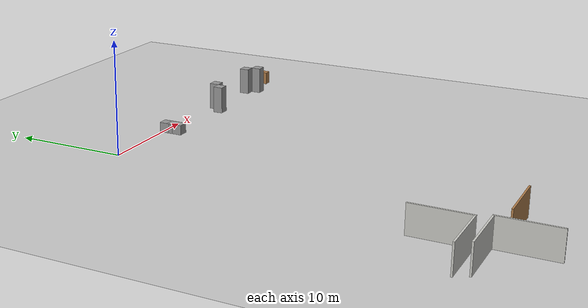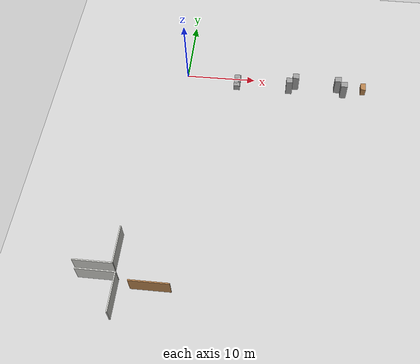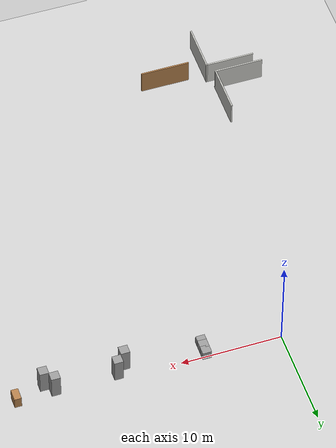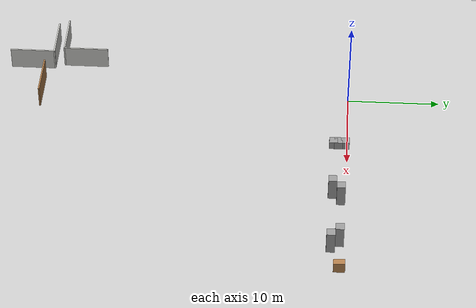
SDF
<sdf version="1.7">
 <world name="default">
  <model name="ground_plane">
   <static>1</static>
   <link name="link">
    <collision name="collision">
     <geometry><plane><normal>0 0 1</normal><size>100 100</size></plane></geometry>
     <surface><friction><ode><mu>100</mu><mu2>50</mu2></ode></friction></surface>
    </collision>
    <visual name="visual">
     <cast_shadows>0</cast_shadows>
     <geometry><plane><normal>0 0 1</normal><size>100 100</size></plane></geometry>
     <material>
      <script><uri>file://media/materials/scripts/gazebo.material</uri><name>Gazebo/Grey</name></script>
     </material>
    </visual>
   </link>
  </model>
  <model name="Untitled_clone_0">
   <link name="Wall_2">
    <pose>0 -2.2325 0 0 -0 0</pose>
    <visual name="Wall_2_Visual">
     <pose>0 0 1.25 0 -0 0</pose>
     <geometry><box><size>5 0.15 2.5</size></box></geometry>
     <material>
      <script><uri>file://media/materials/scripts/gazebo.material</uri><name>Gazebo/CeilingTiled</name></script>
      <ambient>1 1 1 1</ambient>
      <shader type="pixel"/>
     </material>
     <meta><layer>0</layer></meta>
    </visual>
    <collision name="Wall_2_Collision">
     <pose>0 0 1.25 0 -0 0</pose>
     <geometry><box><size>5 0.15 2.5</size></box></geometry>
     <surface>
      <friction>
       <ode><mu>1</mu><mu2>1</mu2><fdir1>0 0 0</fdir1><slip1>0</slip1><slip2>0</slip2></ode>
       <torsional>
        <coefficient>1</coefficient>
        <patch_radius>0</patch_radius>
        <surface_radius>0</surface_radius>
        <use_patch_radius>1</use_patch_radius>
        <ode><slip>0</slip></ode>
       </torsional>
      </friction>
      <bounce><restitution_coefficient>0</restitution_coefficient><threshold>1e+06</threshold></bounce>
      <contact>
       <collide_without_contact>0</collide_without_contact>
       <collide_without_contact_bitmask>1</collide_without_contact_bitmask>
       <collide_bitmask>1</collide_bitmask>
       <ode>
        <soft_cfm>0</soft_cfm>
        <soft_erp>0.2</soft_erp>
        <kp>1e+13</kp>
        <kd>1</kd>
        <max_vel>0.01</max_vel>
        <min_depth>0</min_depth>
       </ode>
       <bullet>
        <split_impulse>1</split_impulse>
        <split_impulse_penetration_threshold>-0.01</split_impulse_penetration_threshold>
        <soft_cfm>0</soft_cfm>
        <soft_erp>0.2</soft_erp>
        <kp>1e+13</kp>
        <kd>1</kd>
       </bullet>
      </contact>
     </surface>
    </collision>
   </link>
   <link name="Wall_2_clone_clone">
    <pose>2.42084 -4.65277 0 0 -0 1.57</pose>
    <inertial>
     <mass>1</mass>
     <inertia><ixx>1</ixx><ixy>0</ixy><ixz>0</ixz><iyy>1</iyy><iyz>0</iyz><izz>1</izz></inertia>
    </inertial>
    <visual name="Wall_2_Visual">
     <pose>0 0 1.25 0 -0 0</pose>
     <geometry><box><size>5 0.15 2.5</size></box></geometry>
     <material>
      <script><uri>file://media/materials/scripts/gazebo.material</uri><name>Gazebo/CeilingTiled</name></script>
      <ambient>1 1 1 1</ambient>
      <shader type="pixel"><normal_map>__default__</normal_map></shader>
      <diffuse>1 1 1 1</diffuse>
      <specular>0 0 0 1</specular>
      <emissive>0 0 0 1</emissive>
     </material>
     <meta><layer>0</layer></meta>
    </visual>
    <collision name="Wall_2_Collision">
     <pose>0 0 1.25 0 -0 0</pose>
     <geometry><box><size>5 0.15 2.5</size></box></geometry>
     <surface>
      <friction>
       <ode><mu>1</mu><mu2>1</mu2><fdir1>0 0 0</fdir1><slip1>0</slip1><slip2>0</slip2></ode>
       <torsional>
        <coefficient>1</coefficient>
        <patch_radius>0</patch_radius>
        <surface_radius>0</surface_radius>
        <use_patch_radius>1</use_patch_radius>
        <ode><slip>0</slip></ode>
       </torsional>
      </friction>
      <bounce><restitution_coefficient>0</restitution_coefficient><threshold>1e+06</threshold></bounce>
      <contact>
       <collide_without_contact>0</collide_without_contact>
       <collide_without_contact_bitmask>1</collide_without_contact_bitmask>
       <collide_bitmask>1</collide_bitmask>
       <ode>
        <soft_cfm>0</soft_cfm>
        <soft_erp>0.2</soft_erp>
        <kp>1e+13</kp>
        <kd>1</kd>
        <max_vel>0.01</max_vel>
        <min_depth>0</min_depth>
       </ode>
       <bullet>
        <split_impulse>1</split_impulse>
        <split_impulse_penetration_threshold>-0.01</split_impulse_penetration_threshold>
        <soft_cfm>0</soft_cfm>
        <soft_erp>0.2</soft_erp>
        <kp>1e+13</kp>
        <kd>1</kd>
       </bullet>
      </contact>
     </surface>
    </collision>
   </link>
   <static>1</static>
   <pose>-6.29197 -30.9758 0 0 -0 0</pose>
  </model>
  <model name="Untitled_clone_clone_clone_clone_0">
   <link name="Wall_2">
    <pose>0 -2.2325 0 0 -0 0</pose>
    <visual name="Wall_2_Visual">
     <pose>0 0 1.25 0 -0 0</pose>
     <geometry><box><size>5 0.15 2.5</size></box></geometry>
     <material>
      <script><uri>file://media/materials/scripts/gazebo.material</uri><name>Gazebo/CeilingTiled</name></script>
      <ambient>1 1 1 1</ambient>
      <shader type="pixel"/>
     </material>
     <meta><layer>0</layer></meta>
    </visual>
    <collision name="Wall_2_Collision">
     <pose>0 0 1.25 0 -0 0</pose>
     <geometry><box><size>5 0.15 2.5</size></box></geometry>
     <surface>
      <friction>
       <ode><mu>1</mu><mu2>1</mu2><fdir1>0 0 0</fdir1><slip1>0</slip1><slip2>0</slip2></ode>
       <torsional>
        <coefficient>1</coefficient>
        <patch_radius>0</patch_radius>
        <surface_radius>0</surface_radius>
        <use_patch_radius>1</use_patch_radius>
        <ode><slip>0</slip></ode>
       </torsional>
      </friction>
      <bounce><restitution_coefficient>0</restitution_coefficient><threshold>1e+06</threshold></bounce>
      <contact>
       <collide_without_contact>0</collide_without_contact>
       <collide_without_contact_bitmask>1</collide_without_contact_bitmask>
       <collide_bitmask>1</collide_bitmask>
       <ode>
        <soft_cfm>0</soft_cfm>
        <soft_erp>0.2</soft_erp>
        <kp>1e+13</kp>
        <kd>1</kd>
        <max_vel>0.01</max_vel>
        <min_depth>0</min_depth>
       </ode>
       <bullet>
        <split_impulse>1</split_impulse>
        <split_impulse_penetration_threshold>-0.01</split_impulse_penetration_threshold>
        <soft_cfm>0</soft_cfm>
        <soft_erp>0.2</soft_erp>
        <kp>1e+13</kp>
        <kd>1</kd>
       </bullet>
      </contact>
     </surface>
    </collision>
   </link>
   <link name="Wall_2_clone_clone_clone_clone">
    <pose>2.42664 0.193548 0 0 -0 1.57</pose>
    <inertial>
     <mass>1</mass>
     <inertia><ixx>1</ixx><ixy>0</ixy><ixz>0</ixz><iyy>1</iyy><iyz>0</iyz><izz>1</izz></inertia>
    </inertial>
    <visual name="Wall_2_Visual">
     <pose>0 0 1.25 0 -0 0</pose>
     <geometry><box><size>5 0.15 2.5</size></box></geometry>
     <material>
      <script><uri>file://media/materials/scripts/gazebo.material</uri><name>Gazebo/CeilingTiled</name></script>
      <ambient>1 1 1 1</ambient>
      <shader type="pixel"><normal_map>__default__</normal_map></shader>
      <diffuse>1 1 1 1</diffuse>
      <specular>0 0 0 1</specular>
      <emissive>0 0 0 1</emissive>
     </material>
     <meta><layer>0</layer></meta>
    </visual>
    <collision name="Wall_2_Collision">
     <pose>0 0 1.25 0 -0 0</pose>
     <geometry><box><size>5 0.15 2.5</size></box></geometry>
     <surface>
      <friction>
       <ode><mu>1</mu><mu2>1</mu2><fdir1>0 0 0</fdir1><slip1>0</slip1><slip2>0</slip2></ode>
       <torsional>
        <coefficient>1</coefficient>
        <patch_radius>0</patch_radius>
        <surface_radius>0</surface_radius>
        <use_patch_radius>1</use_patch_radius>
        <ode><slip>0</slip></ode>
       </torsional>
      </friction>
      <bounce><restitution_coefficient>0</restitution_coefficient><threshold>1e+06</threshold></bounce>
      <contact>
       <collide_without_contact>0</collide_without_contact>
       <collide_without_contact_bitmask>1</collide_without_contact_bitmask>
       <collide_bitmask>1</collide_bitmask>
       <ode>
        <soft_cfm>0</soft_cfm>
        <soft_erp>0.2</soft_erp>
        <kp>1e+13</kp>
        <kd>1</kd>
        <max_vel>0.01</max_vel>
        <min_depth>0</min_depth>
       </ode>
       <bullet>
        <split_impulse>1</split_impulse>
        <split_impulse_penetration_threshold>-0.01</split_impulse_penetration_threshold>
        <soft_cfm>0</soft_cfm>
        <soft_erp>0.2</soft_erp>
        <kp>1e+13</kp>
        <kd>1</kd>
       </bullet>
      </contact>
     </surface>
    </collision>
   </link>
   <static>1</static>
   <pose>-6.88141 -29.8912 0 0 -0 0</pose>
  </model>
  <model name="Untitled_0_clone_2">
   <pose>0.490756 -28.2308 0 0 -0 0</pose>
   <link name="Wall_7">
    <collision name="Wall_7_Collision">
     <geometry><box><size>5 0.15 2.5</size></box></geometry>
     <pose>0 0 1.25 0 -0 0</pose>
    </collision>
    <visual name="Wall_7_Visual">
     <pose>0 0 1.25 0 -0 0</pose>
     <geometry><box><size>5 0.15 2.5</size></box></geometry>
     <material>
      <script><uri>file://media/materials/scripts/gazebo.material</uri><name>Gazebo/Wood</name></script>
      <ambient>1 1 1 1</ambient>
     </material>
     <meta><layer>0</layer></meta>
    </visual>
    <pose>-0.2375 -5.8475 0 0 -0 0</pose>
   </link>
   <static>1</static>
  </model>
  <model name="unit_box_0_clone_clone">
   <link name="link">
    <inertial>
     <mass>1</mass>
     <inertia>
      <ixx>0.166667</ixx>
      <ixy>0</ixy>
      <ixz>0</ixz>
      <iyy>0.166667</iyy>
      <iyz>0</iyz>
      <izz>0.166667</izz>
     </inertia>
    </inertial>
    <visual name="visual">
     <geometry><box><size>0.7 1.2 1.2</size></box></geometry>
     <material>
      <script><uri>file://media/materials/scripts/gazebo.material</uri><name>Gazebo/Wood</name></script>
      <shader type="pixel"><normal_map>__default__</normal_map></shader>
      <ambient>1 1 1 1</ambient>
      <diffuse>0.7 0.7 0.7 1</diffuse>
      <specular>0.01 0.01 0.01 1</specular>
      <emissive>0 0 0 1</emissive>
     </material>
    </visual>
    <collision name="collision">
     <geometry><box><size>0.7 1.2 1.2</size></box></geometry>
     <surface>
      <friction>
       <ode><mu>1</mu><mu2>1</mu2><fdir1>0 0 0</fdir1><slip1>0</slip1><slip2>0</slip2></ode>
       <torsional>
        <coefficient>1</coefficient>
        <patch_radius>0</patch_radius>
        <surface_radius>0</surface_radius>
        <use_patch_radius>1</use_patch_radius>
        <ode><slip>0</slip></ode>
       </torsional>
      </friction>
      <bounce><restitution_coefficient>0</restitution_coefficient><threshold>1e+06</threshold></bounce>
      <contact>
       <collide_without_contact>0</collide_without_contact>
       <collide_without_contact_bitmask>1</collide_without_contact_bitmask>
       <collide_bitmask>1</collide_bitmask>
       <ode>
        <soft_cfm>0</soft_cfm>
        <soft_erp>0.2</soft_erp>
        <kp>1e+13</kp>
        <kd>1</kd>
        <max_vel>0.01</max_vel>
        <min_depth>0</min_depth>
       </ode>
       <bullet>
        <split_impulse>1</split_impulse>
        <split_impulse_penetration_threshold>-0.01</split_impulse_penetration_threshold>
        <soft_cfm>0</soft_cfm>
        <soft_erp>0.2</soft_erp>
        <kp>1e+13</kp>
        <kd>1</kd>
       </bullet>
      </contact>
     </surface>
    </collision>
   </link>
   <static>0</static>
   <pose>26.0358 -0.614545 0.599999 1e-06 3e-06 0.000351</pose>
  </model>
  <model name="unit_box">
   <link name="link">
    <inertial>
     <mass>1</mass>
     <inertia>
      <ixx>0.166667</ixx>
      <ixy>0</ixy>
      <ixz>0</ixz>
      <iyy>0.166667</iyy>
      <iyz>0</iyz>
      <izz>0.166667</izz>
     </inertia>
    </inertial>
    <visual name="visual">
     <geometry><box><size>0.9 0.9 0.9</size></box></geometry>
     <material>
      <script><name>Gazebo/Grey</name><uri>file://media/materials/scripts/gazebo.material</uri></script>
      <shader type="pixel"><normal_map>__default__</normal_map></shader>
      <ambient>0.3 0.3 0.3 1</ambient>
      <diffuse>0.7 0.7 0.7 1</diffuse>
      <specular>0.01 0.01 0.01 1</specular>
      <emissive>0 0 0 1</emissive>
     </material>
    </visual>
    <collision name="collision">
     <geometry><box><size>0.9 0.9 0.9</size></box></geometry>
     <surface>
      <friction>
       <ode><mu>1</mu><mu2>1</mu2><fdir1>0 0 0</fdir1><slip1>0</slip1><slip2>0</slip2></ode>
       <torsional>
        <coefficient>1</coefficient>
        <patch_radius>0</patch_radius>
        <surface_radius>0</surface_radius>
        <use_patch_radius>1</use_patch_radius>
        <ode><slip>0</slip></ode>
       </torsional>
      </friction>
      <bounce><restitution_coefficient>0</restitution_coefficient><threshold>1e+06</threshold></bounce>
      <contact>
       <collide_without_contact>0</collide_without_contact>
       <collide_without_contact_bitmask>1</collide_without_contact_bitmask>
       <collide_bitmask>1</collide_bitmask>
       <ode>
        <soft_cfm>0</soft_cfm>
        <soft_erp>0.2</soft_erp>
        <kp>1e+13</kp>
        <kd>1</kd>
        <max_vel>0.01</max_vel>
        <min_depth>0</min_depth>
       </ode>
       <bullet>
        <split_impulse>1</split_impulse>
        <split_impulse_penetration_threshold>-0.01</split_impulse_penetration_threshold>
        <soft_cfm>0</soft_cfm>
        <soft_erp>0.2</soft_erp>
        <kp>1e+13</kp>
        <kd>1</kd>
       </bullet>
      </contact>
     </surface>
    </collision>
   </link>
   <link name="link_clone_0_clone">
    <inertial>
     <mass>1</mass>
     <inertia>
      <ixx>0.166667</ixx>
      <ixy>0</ixy>
      <ixz>0</ixz>
      <iyy>0.166667</iyy>
      <iyz>0</iyz>
      <izz>0.166667</izz>
     </inertia>
    </inertial>
    <pose>0.001814 0.546546 0 0 -0 0</pose>
    <visual name="visual">
     <geometry><box><size>0.9 0.9 0.9</size></box></geometry>
     <material>
      <script><name>Gazebo/Grey</name><uri>file://media/materials/scripts/gazebo.material</uri></script>
      <shader type="pixel"><normal_map>__default__</normal_map></shader>
      <ambient>0.3 0.3 0.3 1</ambient>
      <diffuse>0.7 0.7 0.7 1</diffuse>
      <specular>0.01 0.01 0.01 1</specular>
      <emissive>0 0 0 1</emissive>
     </material>
    </visual>
    <collision name="collision">
     <geometry><box><size>0.9 0.9 0.9</size></box></geometry>
     <surface>
      <friction>
       <ode><mu>1</mu><mu2>1</mu2><fdir1>0 0 0</fdir1><slip1>0</slip1><slip2>0</slip2></ode>
       <torsional>
        <coefficient>1</coefficient>
        <patch_radius>0</patch_radius>
        <surface_radius>0</surface_radius>
        <use_patch_radius>1</use_patch_radius>
        <ode><slip>0</slip></ode>
       </torsional>
      </friction>
      <bounce><restitution_coefficient>0</restitution_coefficient><threshold>1e+06</threshold></bounce>
      <contact>
       <collide_without_contact>0</collide_without_contact>
       <collide_without_contact_bitmask>1</collide_without_contact_bitmask>
       <collide_bitmask>1</collide_bitmask>
       <ode>
        <soft_cfm>0</soft_cfm>
        <soft_erp>0.2</soft_erp>
        <kp>1e+13</kp>
        <kd>1</kd>
        <max_vel>0.01</max_vel>
        <min_depth>0</min_depth>
       </ode>
       <bullet>
        <split_impulse>1</split_impulse>
        <split_impulse_penetration_threshold>-0.01</split_impulse_penetration_threshold>
        <soft_cfm>0</soft_cfm>
        <soft_erp>0.2</soft_erp>
        <kp>1e+13</kp>
        <kd>1</kd>
       </bullet>
      </contact>
     </surface>
    </collision>
   </link>
   <link name="link_clone_0_clone_clone">
    <inertial>
     <mass>1</mass>
     <inertia>
      <ixx>0.166667</ixx>
      <ixy>0</ixy>
      <ixz>0</ixz>
      <iyy>0.166667</iyy>
      <iyz>0</iyz>
      <izz>0.166667</izz>
     </inertia>
    </inertial>
    <pose>0.000695 1.26691 0 0 -0 0</pose>
    <visual name="visual">
     <geometry><box><size>0.9 0.9 0.9</size></box></geometry>
     <material>
      <script><name>Gazebo/Grey</name><uri>file://media/materials/scripts/gazebo.material</uri></script>
      <shader type="pixel"><normal_map>__default__</normal_map></shader>
      <ambient>0.3 0.3 0.3 1</ambient>
      <diffuse>0.7 0.7 0.7 1</diffuse>
      <specular>0.01 0.01 0.01 1</specular>
      <emissive>0 0 0 1</emissive>
     </material>
    </visual>
    <collision name="collision">
     <geometry><box><size>0.9 0.9 0.9</size></box></geometry>
     <surface>
      <friction>
       <ode><mu>1</mu><mu2>1</mu2><fdir1>0 0 0</fdir1><slip1>0</slip1><slip2>0</slip2></ode>
       <torsional>
        <coefficient>1</coefficient>
        <patch_radius>0</patch_radius>
        <surface_radius>0</surface_radius>
        <use_patch_radius>1</use_patch_radius>
        <ode><slip>0</slip></ode>
       </torsional>
      </friction>
      <bounce><restitution_coefficient>0</restitution_coefficient><threshold>1e+06</threshold></bounce>
      <contact>
       <collide_without_contact>0</collide_without_contact>
       <collide_without_contact_bitmask>1</collide_without_contact_bitmask>
       <collide_bitmask>1</collide_bitmask>
       <ode>
        <soft_cfm>0</soft_cfm>
        <soft_erp>0.2</soft_erp>
        <kp>1e+13</kp>
        <kd>1</kd>
        <max_vel>0.01</max_vel>
        <min_depth>0</min_depth>
       </ode>
       <bullet>
        <split_impulse>1</split_impulse>
        <split_impulse_penetration_threshold>-0.01</split_impulse_penetration_threshold>
        <soft_cfm>0</soft_cfm>
        <soft_erp>0.2</soft_erp>
        <kp>1e+13</kp>
        <kd>1</kd>
       </bullet>
      </contact>
     </surface>
    </collision>
   </link>
   <link name="link_clone_0_clone_clone_3_clone_2_clone_21">
    <inertial>
     <mass>1</mass>
     <inertia>
      <ixx>0.166667</ixx>
      <ixy>0</ixy>
      <ixz>0</ixz>
      <iyy>0.166667</iyy>
      <iyz>0</iyz>
      <izz>0.166667</izz>
     </inertia>
    </inertial>
    <pose>15.596 -0.044491 0 0 -0 0</pose>
    <visual name="visual">
     <geometry><box><size>0.9 0.9 4</size></box></geometry>
     <material>
      <script><name>Gazebo/Grey</name><uri>file://media/materials/scripts/gazebo.material</uri></script>
      <shader type="pixel"><normal_map>__default__</normal_map></shader>
      <ambient>0.3 0.3 0.3 1</ambient>
      <diffuse>0.7 0.7 0.7 1</diffuse>
      <specular>0.01 0.01 0.01 1</specular>
      <emissive>0 0 0 1</emissive>
     </material>
    </visual>
    <collision name="collision">
     <geometry><box><size>0.9 0.9 4</size></box></geometry>
     <surface>
      <friction>
       <ode><mu>1</mu><mu2>1</mu2><fdir1>0 0 0</fdir1><slip1>0</slip1><slip2>0</slip2></ode>
       <torsional>
        <coefficient>1</coefficient>
        <patch_radius>0</patch_radius>
        <surface_radius>0</surface_radius>
        <use_patch_radius>1</use_patch_radius>
        <ode><slip>0</slip></ode>
       </torsional>
      </friction>
      <bounce><restitution_coefficient>0</restitution_coefficient><threshold>1e+06</threshold></bounce>
      <contact>
       <collide_without_contact>0</collide_without_contact>
       <collide_without_contact_bitmask>1</collide_without_contact_bitmask>
       <collide_bitmask>1</collide_bitmask>
       <ode>
        <soft_cfm>0</soft_cfm>
        <soft_erp>0.2</soft_erp>
        <kp>1e+13</kp>
        <kd>1</kd>
        <max_vel>0.01</max_vel>
        <min_depth>0</min_depth>
       </ode>
       <bullet>
        <split_impulse>1</split_impulse>
        <split_impulse_penetration_threshold>-0.01</split_impulse_penetration_threshold>
        <soft_cfm>0</soft_cfm>
        <soft_erp>0.2</soft_erp>
        <kp>1e+13</kp>
        <kd>1</kd>
       </bullet>
      </contact>
     </surface>
    </collision>
   </link>
   <link name="link_clone_0_clone_clone_3_clone_2_clone_22">
    <inertial>
     <mass>1</mass>
     <inertia>
      <ixx>0.166667</ixx>
      <ixy>0</ixy>
      <ixz>0</ixz>
      <iyy>0.166667</iyy>
      <iyz>0</iyz>
      <izz>0.166667</izz>
     </inertia>
    </inertial>
    <pose>14.7375 0.847307 0 0 -0 0</pose>
    <visual name="visual">
     <geometry><box><size>0.9 0.9 4</size></box></geometry>
     <material>
      <script><name>Gazebo/Grey</name><uri>file://media/materials/scripts/gazebo.material</uri></script>
      <shader type="pixel"><normal_map>__default__</normal_map></shader>
      <ambient>0.3 0.3 0.3 1</ambient>
      <diffuse>0.7 0.7 0.7 1</diffuse>
      <specular>0.01 0.01 0.01 1</specular>
      <emissive>0 0 0 1</emissive>
     </material>
    </visual>
    <collision name="collision">
     <geometry><box><size>0.9 0.9 4</size></box></geometry>
     <surface>
      <friction>
       <ode><mu>1</mu><mu2>1</mu2><fdir1>0 0 0</fdir1><slip1>0</slip1><slip2>0</slip2></ode>
       <torsional>
        <coefficient>1</coefficient>
        <patch_radius>0</patch_radius>
        <surface_radius>0</surface_radius>
        <use_patch_radius>1</use_patch_radius>
        <ode><slip>0</slip></ode>
       </torsional>
      </friction>
      <bounce><restitution_coefficient>0</restitution_coefficient><threshold>1e+06</threshold></bounce>
      <contact>
       <collide_without_contact>0</collide_without_contact>
       <collide_without_contact_bitmask>1</collide_without_contact_bitmask>
       <collide_bitmask>1</collide_bitmask>
       <ode>
        <soft_cfm>0</soft_cfm>
        <soft_erp>0.2</soft_erp>
        <kp>1e+13</kp>
        <kd>1</kd>
        <max_vel>0.01</max_vel>
        <min_depth>0</min_depth>
       </ode>
       <bullet>
        <split_impulse>1</split_impulse>
        <split_impulse_penetration_threshold>-0.01</split_impulse_penetration_threshold>
        <soft_cfm>0</soft_cfm>
        <soft_erp>0.2</soft_erp>
        <kp>1e+13</kp>
        <kd>1</kd>
       </bullet>
      </contact>
     </surface>
    </collision>
   </link>
   <link name="link_clone_0_clone_clone_3_clone_2_clone_30">
    <inertial>
     <mass>1</mass>
     <inertia>
      <ixx>0.166667</ixx>
      <ixy>0</ixy>
      <ixz>0</ixz>
      <iyy>0.166667</iyy>
      <iyz>0</iyz>
      <izz>0.166667</izz>
     </inertia>
    </inertial>
    <pose>8.60253 0.907256 0 0 -0 0</pose>
    <visual name="visual">
     <geometry><box><size>0.9 0.9 4</size></box></geometry>
     <material>
      <script><name>Gazebo/Grey</name><uri>file://media/materials/scripts/gazebo.material</uri></script>
      <shader type="pixel"><normal_map>__default__</normal_map></shader>
      <ambient>0.3 0.3 0.3 1</ambient>
      <diffuse>0.7 0.7 0.7 1</diffuse>
      <specular>0.01 0.01 0.01 1</specular>
      <emissive>0 0 0 1</emissive>
     </material>
    </visual>
    <collision name="collision">
     <geometry><box><size>0.9 0.9 4</size></box></geometry>
     <surface>
      <friction>
       <ode><mu>1</mu><mu2>1</mu2><fdir1>0 0 0</fdir1><slip1>0</slip1><slip2>0</slip2></ode>
       <torsional>
        <coefficient>1</coefficient>
        <patch_radius>0</patch_radius>
        <surface_radius>0</surface_radius>
        <use_patch_radius>1</use_patch_radius>
        <ode><slip>0</slip></ode>
       </torsional>
      </friction>
      <bounce><restitution_coefficient>0</restitution_coefficient><threshold>1e+06</threshold></bounce>
      <contact>
       <collide_without_contact>0</collide_without_contact>
       <collide_without_contact_bitmask>1</collide_without_contact_bitmask>
       <collide_bitmask>1</collide_bitmask>
       <ode>
        <soft_cfm>0</soft_cfm>
        <soft_erp>0.2</soft_erp>
        <kp>1e+13</kp>
        <kd>1</kd>
        <max_vel>0.01</max_vel>
        <min_depth>0</min_depth>
       </ode>
       <bullet>
        <split_impulse>1</split_impulse>
        <split_impulse_penetration_threshold>-0.01</split_impulse_penetration_threshold>
        <soft_cfm>0</soft_cfm>
        <soft_erp>0.2</soft_erp>
        <kp>1e+13</kp>
        <kd>1</kd>
       </bullet>
      </contact>
     </surface>
    </collision>
   </link>
   <link name="link_clone_0_clone_clone_3_clone_2_clone_31">
    <inertial>
     <mass>1</mass>
     <inertia>
      <ixx>0.166667</ixx>
      <ixy>0</ixy>
      <ixz>0</ixz>
      <iyy>0.166667</iyy>
      <iyz>0</iyz>
      <izz>0.166667</izz>
     </inertia>
    </inertial>
    <pose>7.67945 0.009107 0 0 -0 0</pose>
    <visual name="visual">
     <geometry><box><size>0.9 0.9 4</size></box></geometry>
     <material>
      <script><name>Gazebo/Grey</name><uri>file://media/materials/scripts/gazebo.material</uri></script>
      <shader type="pixel"><normal_map>__default__</normal_map></shader>
      <ambient>0.3 0.3 0.3 1</ambient>
      <diffuse>0.7 0.7 0.7 1</diffuse>
      <specular>0.01 0.01 0.01 1</specular>
      <emissive>0 0 0 1</emissive>
     </material>
    </visual>
    <collision name="collision">
     <geometry><box><size>0.9 0.9 4</size></box></geometry>
     <surface>
      <friction>
       <ode><mu>1</mu><mu2>1</mu2><fdir1>0 0 0</fdir1><slip1>0</slip1><slip2>0</slip2></ode>
       <torsional>
        <coefficient>1</coefficient>
        <patch_radius>0</patch_radius>
        <surface_radius>0</surface_radius>
        <use_patch_radius>1</use_patch_radius>
        <ode><slip>0</slip></ode>
       </torsional>
      </friction>
      <bounce><restitution_coefficient>0</restitution_coefficient><threshold>1e+06</threshold></bounce>
      <contact>
       <collide_without_contact>0</collide_without_contact>
       <collide_without_contact_bitmask>1</collide_without_contact_bitmask>
       <collide_bitmask>1</collide_bitmask>
       <ode>
        <soft_cfm>0</soft_cfm>
        <soft_erp>0.2</soft_erp>
        <kp>1e+13</kp>
        <kd>1</kd>
        <max_vel>0.01</max_vel>
        <min_depth>0</min_depth>
       </ode>
       <bullet>
        <split_impulse>1</split_impulse>
        <split_impulse_penetration_threshold>-0.01</split_impulse_penetration_threshold>
        <soft_cfm>0</soft_cfm>
        <soft_erp>0.2</soft_erp>
        <kp>1e+13</kp>
        <kd>1</kd>
       </bullet>
      </contact>
     </surface>
    </collision>
   </link>
   <static>0</static>
   <pose>7.51627 -1.49726 0.45 0 -0 0</pose>
  </model>
 </world>
</sdf>
